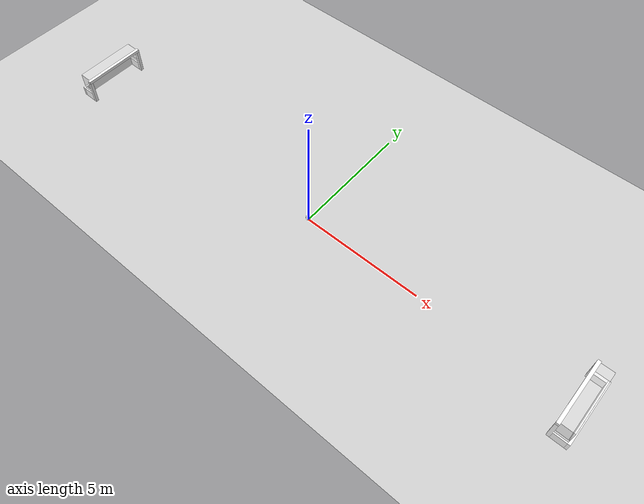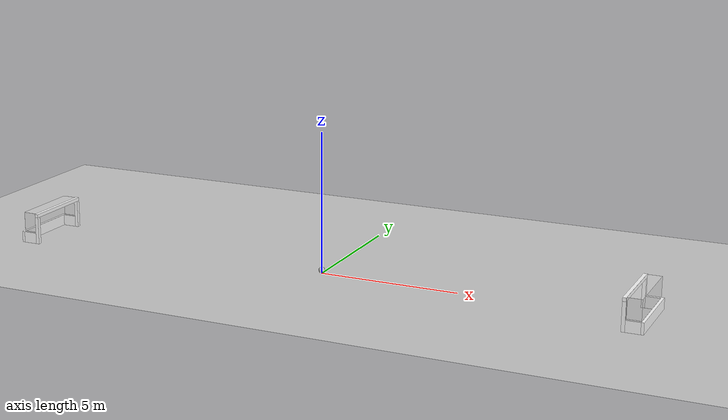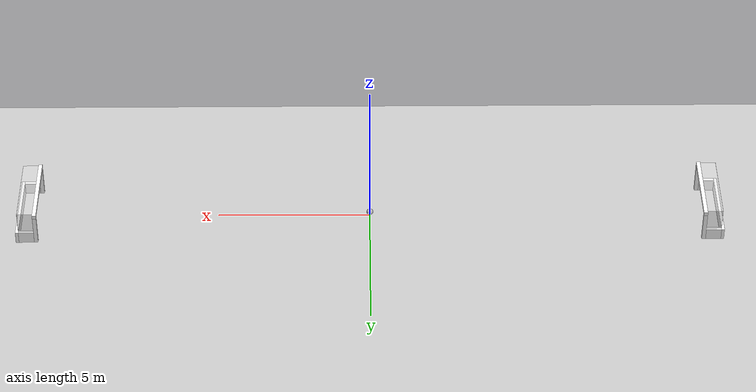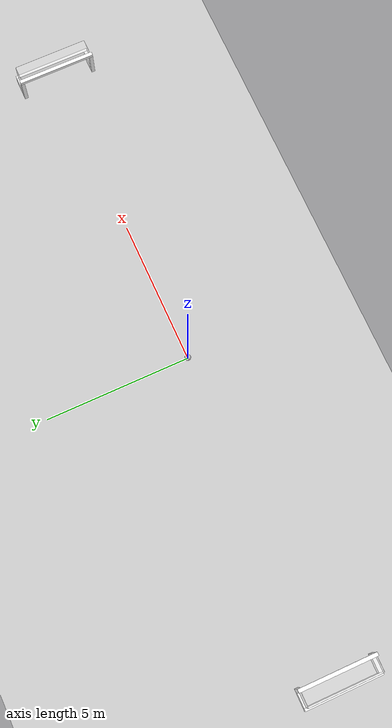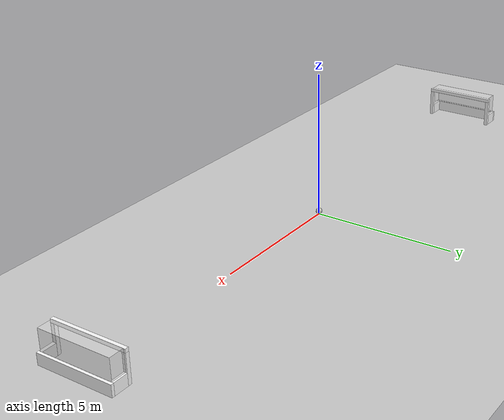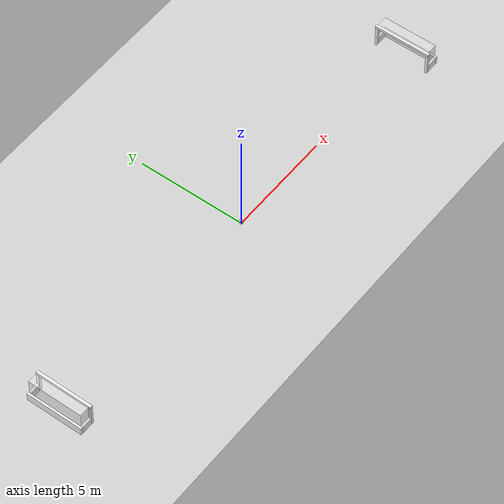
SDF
<sdf version="1.11">
 <world name="RoboCup15MSL">
  <plugin filename="gz-sim-physics-system" name="gz::sim::systems::Physics"/>
  <plugin filename="gz-sim-user-commands-system" name="gz::sim::systems::UserCommands"/>
  <plugin filename="gz-sim-scene-broadcaster-system" name="gz::sim::systems::SceneBroadcaster"/>
  <plugin filename="gz-sim-contact-system" name="gz::sim::systems::Contact"/>
  <scene>
   <ambient>0.4 0.4 0.4 1</ambient>
   <background>0.7 0.7 0.7 1</background>
   <shadows>false</shadows>
   <grid>false</grid>
  </scene>
  <spherical_coordinates>
   <surface_model>EARTH_WGS84</surface_model>
   <latitude_deg>0</latitude_deg>
   <longitude_deg>0</longitude_deg>
   <elevation>0</elevation>
   <heading_deg>0</heading_deg>
  </spherical_coordinates>
  <light type="directional" name="sun">
   <cast_shadows>false</cast_shadows>
   <pose>0 0 10 0 0 0</pose>
   <diffuse>0.8 0.8 0.8 1</diffuse>
   <specular>0.2 0.2 0.2 1</specular>
   <attenuation>
    <range>1000</range>
    <constant>0.9</constant>
    <linear>0.01</linear>
    <quadratic>0.001</quadratic>
   </attenuation>
   <direction>-0.5 0.1 -0.9</direction>
  </light>
  <gravity>0.0 0.0 -9.81</gravity>
  <physics name="default_physics" default="true" type="ode">
   <max_step_size>0.001</max_step_size>
   <real_time_factor>1.0</real_time_factor>
   <real_time_update_rate>200</real_time_update_rate>
   <ode>
    <solver>
     <type>quick</type>
     <iters>50</iters>
     <use_dynamic_moi_rescaling>true</use_dynamic_moi_rescaling>
    </solver>
    <constraints>
     <contact_max_correcting_vel>0.1</contact_max_correcting_vel>
     <contact_surface_layer>0.0001</contact_surface_layer>
    </constraints>
   </ode>
  </physics>
  <model name="ground_plane">
   <static>true</static>
   <link name="link">
    <collision name="collision">
     <geometry><plane><normal>0 0 1</normal><size>100 100</size></plane></geometry>
     <surface>
      <friction><ode><mu>100</mu><mu2>50</mu2></ode></friction>
      <contact><ode><kp>1e15</kp><kd>1e13</kd></ode></contact>
     </surface>
    </collision>
    <visual name="visual">
     <cast_shadows>false</cast_shadows>
     <geometry><plane><normal>0 0 1</normal><size>100 100</size></plane></geometry>
     <material>
      <script><uri>file://media/materials/scripts/gazebo.material</uri><name>Gazebo/Grey</name></script>
     </material>
    </visual>
    <velocity_decay><linear>0</linear><angular>0</angular></velocity_decay>
   </link>
  </model>
  <include>
   <pose>-11 0 0.001 0 0 3.14</pose>
   <uri>model://RoboCup15_MSL_Goal</uri>
   <name>left_goal</name>
   <static>true</static>
  </include>
  <include>
   <pose>11 0 0.001 0 0 0</pose>
   <uri>model://RoboCup15_MSL_Goal</uri>
   <name>right_goal</name>
   <static>true</static>
  </include>
  <include>
   <pose>0 0 0.12 0 0 0</pose>
   <uri>model://football/</uri>
   <name>football</name>
   <static>false</static>
  </include>
 </world>
</sdf>

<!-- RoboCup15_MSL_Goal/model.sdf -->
<!-- XML 声明：标准文件头 -->
<!-- SDF 根标签：版本 1.11，适配 Gazebo Harmonic -->
<sdf version="1.11">

    <!-- 模型定义：RoboCup15_MSL_Goal
       整个文件是一个【球门】模型 -->
    <model name="RoboCup15_MSL_Goal">
        <!-- static=true：静态模型，固定不动，不受物理力影响 -->
        <static>true</static>

        <!-- 左侧门柱：垂直立柱 -->
        <link name="left_post">      <!-- 连杆：左门柱 -->
            <!-- 位姿：X Y Z 横滚 俯仰 偏航 -->
            <pose>-0.0625 1.2625 0.5 0 0 0</pose>

            <!-- 碰撞体：负责物理碰撞 -->
            <collision name="collision">
                <!-- 几何形状容器 -->
                <geometry>
                    <!-- 立方体：长 宽 高 -->
                    <box>
                        <size>0.125 0.125 1.0</size>
                    </box>
                </geometry>
            </collision>

            <!-- 视觉体：负责显示外观 -->
            <visual name="visual">
                <geometry>
                    <box>
                        <size>0.125 0.125 1.0</size>
                    </box>
                </geometry>
                <!-- 材质：纯白色，哑光 -->
                <material>
                    <ambient>1 1 1 1</ambient>          <!-- 环境光色 -->
                    <diffuse>1 1 1 1</diffuse>          <!-- 漫反射色 -->
                    <specular>0.1 0.1 0.1 1</specular>          <!-- 高光 -->
                </material>
            </visual>
        </link>

        <!-- 右侧门柱：垂直立柱 -->
        <link name="right_post">
            <pose>-0.0625 -1.2625 0.5 0 0 0</pose>
            <collision name="collision">
                <geometry>
                    <box>
                        <size>0.125 0.125 1.0</size>
                    </box>
                </geometry>
            </collision>
            <visual name="visual">
                <geometry>
                    <box>
                        <size>0.125 0.125 1.0</size>
                    </box>
                </geometry>
                <material>
                    <ambient>1 1 1 1</ambient>
                    <diffuse>1 1 1 1</diffuse>
                    <specular>0.1 0.1 0.1 1</specular>
                </material>
            </visual>
        </link>

        <!-- 横梁：连接左右门柱顶部 -->
        <link name="crossbar">
            <pose>-0.0625 0 1.0625 0 0 0</pose>
            <collision name="collision">
                <geometry>
                    <box>
                        <size>0.125 2.65 0.125</size>
                    </box>
                </geometry>
            </collision>
            <visual name="visual">
                <geometry>
                    <box>
                        <size>0.125 2.65 0.125</size>
                    </box>
                </geometry>
                <material>
                    <ambient>1 1 1 1</ambient>
                    <diffuse>1 1 1 1</diffuse>
                    <specular>0.1 0.1 0.1 1</specular>
                </material>
            </visual>
        </link>

        <!-- 左下支撑：球门左侧底部支架 -->
        <link name="left_support_horiz_lower">
            <pose>0.25 1.2625 0.2 0 0 0</pose>
            <collision name="collision">
                <geometry>
                    <box>
                        <size>0.5 0.125 0.4</size>
                    </box>
                </geometry>
            </collision>
            <visual name="visual">
                <geometry>
                    <box>
                        <size>0.5 0.125 0.4</size>
                    </box>
                </geometry>
                <material>
                    <ambient>1 1 1 1</ambient>
                    <diffuse>1 1 1 1</diffuse>
                    <specular>0.1 0.1 0.1 1</specular>
                </material>
            </visual>
        </link>

        <!-- 右下支撑：球门右侧底部支架 -->
        <link name="right_support_horiz_lower">
            <pose>0.25 -1.2625 0.2 0 0 0</pose>
            <collision name="collision">
                <geometry>
                    <box>
                        <size>0.5 0.125 0.4</size>
                    </box>
                </geometry>
            </collision>
            <visual name="visual">
                <geometry>
                    <box>
                        <size>0.5 0.125 0.4</size>
                    </box>
                </geometry>
                <material>
                    <ambient>1 1 1 1</ambient>
                    <diffuse>1 1 1 1</diffuse>
                    <specular>0.1 0.1 0.1 1</specular>
                </material>
            </visual>
        </link>

        <!-- 中间支撑：球门后方中间支架 -->
        <link name="center_support_horiz_lower">
            <pose>0.55 0 0.2 0 0 0</pose>
            <collision name="collision">
                <geometry>
                    <box>
                        <size>0.10 2.65 0.4</size>
                    </box>
                </geometry>
            </collision>
            <visual name="visual">
                <geometry>
                    <box>
                        <size>0.10 2.65 0.4</size>
                    </box>
                </geometry>
                <material>
                    <ambient>1 1 1 1</ambient>
                    <diffuse>1 1 1 1</diffuse>
                    <specular>0.1 0.1 0.1 1</specular>
                </material>
            </visual>
        </link>

        <!-- 中间球网：球门主体网 -->
        <link name="center_net">
            <pose>0.5 0 0.7625 0 0 0</pose>
            <collision name="collision">
                <geometry>
                    <box>
                        <size>0.01 2.525 0.725</size>
                    </box>
                </geometry>
            </collision>
            <visual name="visual">
                <geometry>
                    <box>
                        <size>0.01 2.525 0.725</size>
                    </box>
                </geometry>
                <material>
                    <!-- 半透明浅灰色 -->
                    <ambient>0.9 0.9 0.9 0.5</ambient>
                    <diffuse>0.9 0.9 0.9 0.5</diffuse>
                    <specular>0.2 0.2 0.2 1.0</specular>

                    <!-- PBR 物理渲染 -->
                    <pbr>
                        <metal>
                            <albedo_map>./materials/textures/net.png</albedo_map>              <!-- 球网纹理图 -->
                            <roughness>0.5</roughness>              <!-- 粗糙度：中等 -->
                            <metalness>0.0</metalness>              <!-- 非金属 -->
                        </metal>
                    </pbr>
                </material>
            </visual>
        </link>

        <!-- 左侧球网：球门左侧网 -->
        <link name="left_net">
            <pose>0.25 1.2625 0.7625 0 0 0</pose>
            <collision name="collision">
                <geometry>
                    <box>
                        <size>0.5 0.01 0.725</size>
                    </box>
                </geometry>
            </collision>
            <visual name="visual">
                <geometry>
                    <box>
                        <size>0.5 0.01 0.725</size>
                    </box>
                </geometry>
                <material>
                    <ambient>0.9 0.9 0.9 0.5</ambient>
                    <diffuse>0.9 0.9 0.9 0.5</diffuse>
                    <specular>0.2 0.2 0.2 1.0</specular>
                    <pbr>
                        <metal>
                            <albedo_map>./materials/textures/net.png</albedo_map>
                            <roughness>0.5</roughness>
                            <metalness>0.0</metalness>
                        </metal>
                    </pbr>
                </material>
            </visual>
        </link>

        <!-- 右侧球网：球门右侧网 -->
        <link name="right_net">
            <pose>0.25 -1.2625 0.7625 0 0 0</pose>
            <collision name="collision">
                <geometry>
                    <box>
                        <size>0.5 0.01 0.725</size>
                    </box>
                </geometry>
            </collision>
            <visual name="visual">
                <geometry>
                    <box>
                        <size>0.5 0.01 0.725</size>
                    </box>
                </geometry>
                <material>
                    <ambient>0.9 0.9 0.9 0.5</ambient>
                    <diffuse>0.9 0.9 0.9 0.5</diffuse>
                    <specular>0.2 0.2 0.2 1.0</specular>
                    <pbr>
                        <metal>
                            <albedo_map>./materials/textures/net.png</albedo_map>
                            <roughness>0.5</roughness>
                            <metalness>0.0</metalness>
                        </metal>
                    </pbr>
                </material>
            </visual>
        </link>

        <!-- 上部球网：球门顶部网 -->
        <link name="upper_net">
            <pose>0.25 0 1.125 0 0 0</pose>
            <collision name="collision">
                <geometry>
                    <box>
                        <size>0.5 2.525 0.01</size>
                    </box>
                </geometry>
                <!-- 最大碰撞接触点数量 -->
                <max_contacts>10</max_contacts>
            </collision>
            <visual name="visual">
                <geometry>
                    <box>
                        <size>0.5 2.525 0.01</size>
                    </box>
                </geometry>
                <material>
                    <ambient>0.9 0.9 0.9 0.5</ambient>
                    <diffuse>0.9 0.9 0.9 0.5</diffuse>
                    <specular>0.2 0.2 0.2 1.0</specular>
                    <pbr>
                        <metal>
                            <albedo_map>./materials/textures/net.png</albedo_map>
                            <roughness>0.5</roughness>
                            <metalness>0.0</metalness>
                        </metal>
                    </pbr>
                </material>
            </visual>
        </link>

        <!-- 右门柱 → 左门柱（固定） -->
        <joint name="right_post_to_left" type="fixed">
            <parent>left_post</parent>
            <child>right_post</child>
        </joint>

        <!-- 横梁 → 左门柱（固定） -->
        <joint name="crossbar_to_left" type="fixed">
            <parent>left_post</parent>
            <child>crossbar</child>
        </joint>

        <!-- 左下支撑 → 左门柱（固定） -->
        <joint name="left_support_to_left" type="fixed">
            <parent>left_post</parent>
            <child>left_support_horiz_lower</child>
        </joint>

        <!-- 右下支撑 → 左门柱（固定） -->
        <joint name="right_support_to_left" type="fixed">
            <parent>left_post</parent>
            <child>right_support_horiz_lower</child>
        </joint>

        <!-- 中间支撑 → 左门柱（固定） -->
        <joint name="center_support_to_left" type="fixed">
            <parent>left_post</parent>
            <child>center_support_horiz_lower</child>
        </joint>

        <!-- 各球网同理... -->
        <joint name="center_net_to_left" type="fixed">
            <parent>left_post</parent>
            <child>center_net</child>
        </joint>

        <joint name="left_net_to_left" type="fixed">
            <parent>left_post</parent>
            <child>left_net</child>
        </joint>

        <joint name="right_net_to_left" type="fixed">
            <parent>left_post</parent>
            <child>right_net</child>
        </joint>

        <joint name="upper_net_to_left" type="fixed">
            <parent>left_post</parent>
            <child>upper_net</child>
        </joint>
    </model>  <!--
    结束球门模型 -->
</sdf><!--
结束SDF -->

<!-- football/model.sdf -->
<!-- SDF (Simulation Description Format)：Gazebo / Gz Sim 使用的机器人与场景描述格式 -->
<sdf version="1.11">

    <model name="football">

        <!-- static：false 表示该模型受重力与碰撞影响，可自由运动；true 则固定不动 -->
        <static>false</static>

        <pose>0 0 0.02 0 0 0</pose>

        <!--
            link：刚体连杆，是质量、碰撞、视觉、传感器的挂载单元。
            足球只有一个 link，命名为 chassis（与 bridge.yaml 中的话题路径一致）。
        -->
        <link name="chassis">

            <!-- self_collide：同一 link 内多个碰撞体是否互相碰撞；单碰撞体时无实际影响 -->
            <self_collide>false</self_collide>

            <!--
                inertial：惯性属性，物理引擎计算运动与碰撞响应所必需。
                缺少或数值不合理会导致仿真不稳定或行为异常。
            -->
            <inertial>
                <!-- mass：质量，单位 kg；MSL 比赛用球约 0.41 kg -->
                <mass>0.41</mass>

                <inertia>
                    <ixx>3.2e-03</ixx>
                    <iyy>3.2e-03</iyy>
                    <izz>3.2e-03</izz>
                    <ixy>0</ixy>
                    <ixz>0</ixz>
                    <iyz>0</iyz>
                </inertia>
            </inertial>

            <!--
                collision：物理碰撞几何，参与接触检测与力学计算（玩家不可见）。
                名称 collision 被下方 contact 传感器引用。
            -->
            <collision name="collision">

                <!-- geometry：碰撞形状定义 -->
                <geometry>
                    <!-- sphere：球体；radius 0.11 m，对应 MSL 球直径约 0.22 m -->
                    <sphere>
                        <radius>0.11</radius>
                    </sphere>
                </geometry>

                <!-- surface：接触面的物理材质属性（摩擦、弹性、接触求解参数） -->
                <surface>

                    <!-- bounce：碰撞弹性（反弹）参数 -->
                    <bounce>
                        <!-- restitution_coefficient：恢复系数，0=完全非弹性，1=完全弹性；0.05 表示几乎不反弹 -->
                        <restitution_coefficient>0.05</restitution_coefficient>
                        <threshold>10</threshold>
                    </bounce>

                    <!-- friction：摩擦参数 -->
                    <friction>
                        <!-- ode：Open Dynamics Engine 摩擦模型 -->
                        <ode>
                            <!-- mu / mu2：第一、第二摩擦方向系数；1.0 表示较高摩擦 -->
                            <mu>1</mu>
                            <mu2>1</mu2>
                        </ode>

                        <!-- torsional：扭转摩擦，影响球在接触面滚动时的旋转阻力 -->
                        <torsional>
                            <coefficient>1.0</coefficient>
                            <!-- use_patch_radius：是否使用指定接触面半径计算扭转摩擦 -->
                            <use_patch_radius>true</use_patch_radius>
                            <!-- patch_radius：接触面等效半径，单位 m -->
                            <patch_radius>0.05</patch_radius>
                        </torsional>
                    </friction>

                    <!-- contact：接触约束求解器参数 -->
                    <contact>
                        <ode>
                            <!-- max_vel：接触点最大修正速度（m/s），用于抑制穿透时的数值振荡 -->
                            <max_vel>5</max_vel>
                        </ode>
                    </contact>
                </surface>
            </collision>

            <!-- visual：仅用于渲染显示，不参与物理计算 -->
            <visual name="visual">
                <geometry>
                    <!-- mesh：外部网格模型；需保证 scale 后尺寸与 collision 球体半径一致 -->
                    <mesh>
                        <!-- scale：对 mesh 顶点坐标的缩放；若 ball.dae 为单位球则 0.11 对应半径 0.11 m -->
                        <scale>0.11 0.11 0.11</scale>
                        <!-- uri：资源路径；model:// 表示从 Gazebo 模型库中解析 football 包内文件 -->
                        <uri>model://football/meshes/ball.dae</uri>
                    </mesh>
                </geometry>
            </visual>

            <!--
                sensor：仿真传感器，可发布 Gazebo 话题供 ros_gz_bridge 桥接到 ROS 2。
                type="contact"：接触传感器，检测 collision 与其他物体的碰撞事件。
            -->
            <sensor name="contact_sensor" type="contact">
                <!-- always_on：仿真运行期间持续工作 -->
                <always_on>true</always_on>
                <!-- update_rate：发布频率，单位 Hz；50 Hz 适合一般接触检测 -->
                <update_rate>50</update_rate>
                <contact>
                    <!-- collision：指定监测哪个碰撞体（须与上方 collision name 一致） -->
                    <collision>collision</collision>
                </contact>
            </sensor>

            <velocity_decay>
                <linear>0.2</linear>
                <angular>0.5</angular>
            </velocity_decay>

        </link>

        <plugin
            filename="gz-sim-pose-publisher-system"
            name="gz::sim::systems::PosePublisher">

            <publish_model_pose>true</publish_model_pose>
            <publish_link_pose>false</publish_link_pose>
            <publish_collision_pose>false</publish_collision_pose>
            <publish_visual_pose>false</publish_visual_pose>

            <use_pose_vector_msg>true</use_pose_vector_msg>

            <update_frequency>50</update_frequency>
        </plugin>
        <plugin
            filename="gz-sim-velocity-control-system"
            name="gz::sim::systems::VelocityControl">
            <link_name>chassis</link_name>
        </plugin>

        <plugin
            filename="libball_gazebo.so"
            name="nubot_plugins::BallGazebo">
            <mu>0.5</mu>
            <gravity>9.8</gravity>
            <stop_speed>0.05</stop_speed>
            <max_speed>10.0</max_speed>
        </plugin>

    </model>
</sdf>
